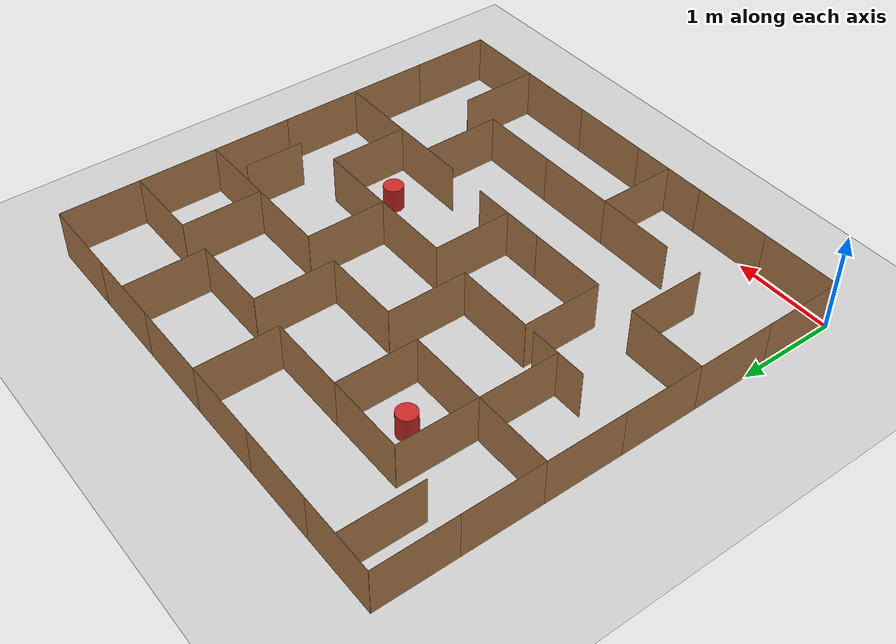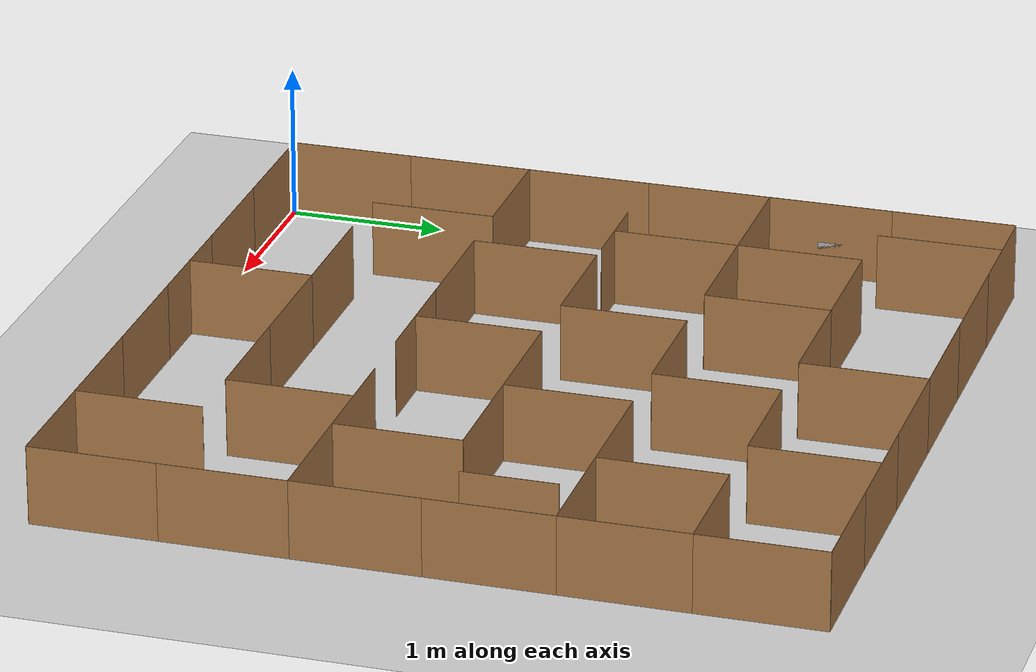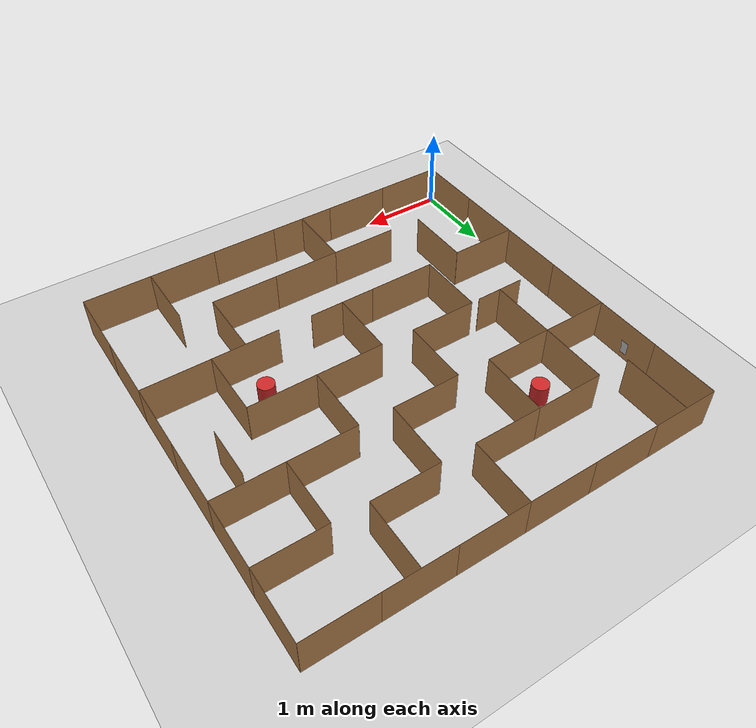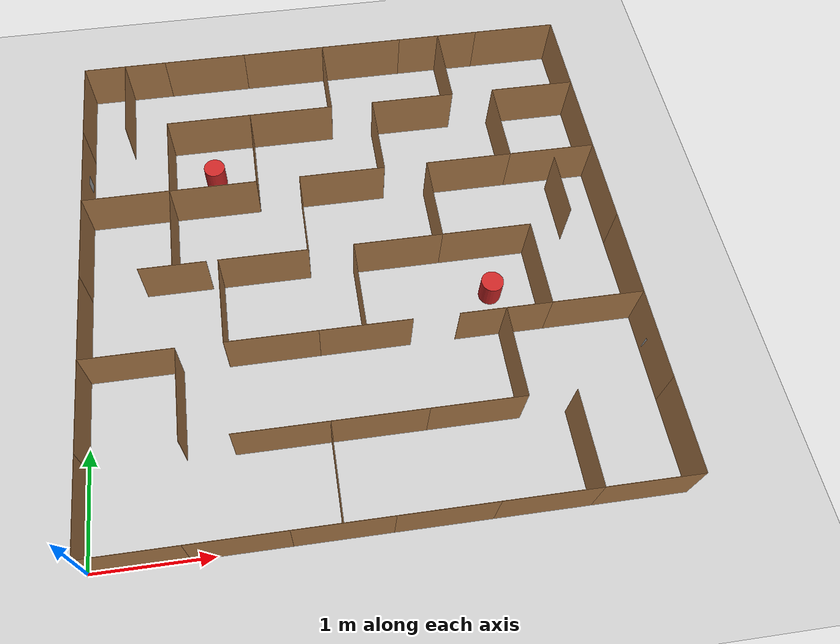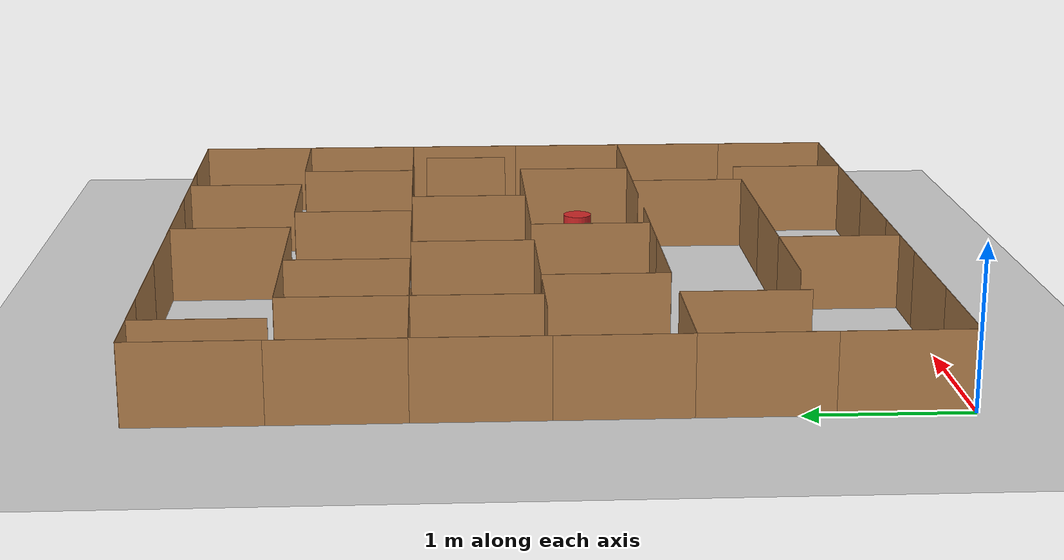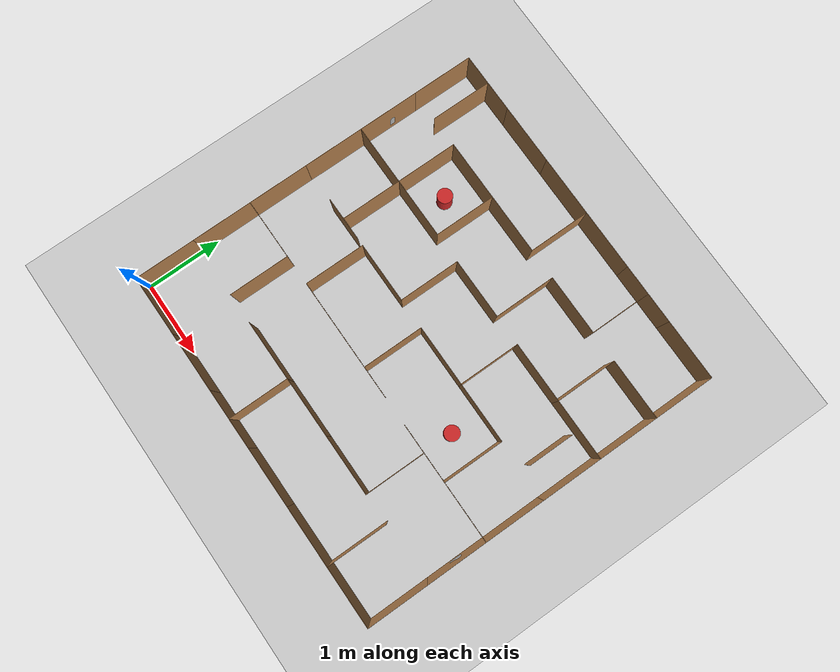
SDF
<?xml version="1.0" ?>
<sdf version="1.6">
  <world name="amr_maze">
    <physics type="ode">
      <real_time_update_rate>1000</real_time_update_rate>
      <max_step_size>0.001</max_step_size>
    </physics>

    <include><uri>model://sun</uri></include>
    <include><uri>model://ground_plane</uri></include>

    <!-- MAZE: 4.8m x 4.8m, based on competition photo -->
    <model name="maze_walls">
      <static>true</static>

      <link name="s0">
        <pose>0.400 0.000 0.25 0 0 0.0000</pose>
        <collision name="c"><geometry><box><size>0.8 0.003 0.5</size></box></geometry></collision>
        <visual name="v"><geometry><box><size>0.8 0.003 0.5</size></box></geometry>
          <material><script>
            <uri>file://media/materials/scripts/gazebo.material</uri>
            <name>Gazebo/Wood</name>
          </script></material>
        </visual>
      </link>
      <link name="n0">
        <pose>0.400 4.800 0.25 0 0 0.0000</pose>
        <collision name="c"><geometry><box><size>0.8 0.003 0.5</size></box></geometry></collision>
        <visual name="v"><geometry><box><size>0.8 0.003 0.5</size></box></geometry>
          <material><script>
            <uri>file://media/materials/scripts/gazebo.material</uri>
            <name>Gazebo/Wood</name>
          </script></material>
        </visual>
      </link>
      <link name="s1">
        <pose>1.200 0.000 0.25 0 0 0.0000</pose>
        <collision name="c"><geometry><box><size>0.8 0.003 0.5</size></box></geometry></collision>
        <visual name="v"><geometry><box><size>0.8 0.003 0.5</size></box></geometry>
          <material><script>
            <uri>file://media/materials/scripts/gazebo.material</uri>
            <name>Gazebo/Wood</name>
          </script></material>
        </visual>
      </link>
      <link name="n1">
        <pose>1.200 4.800 0.25 0 0 0.0000</pose>
        <collision name="c"><geometry><box><size>0.8 0.003 0.5</size></box></geometry></collision>
        <visual name="v"><geometry><box><size>0.8 0.003 0.5</size></box></geometry>
          <material><script>
            <uri>file://media/materials/scripts/gazebo.material</uri>
            <name>Gazebo/Wood</name>
          </script></material>
        </visual>
      </link>
      <link name="s2">
        <pose>2.000 0.000 0.25 0 0 0.0000</pose>
        <collision name="c"><geometry><box><size>0.8 0.003 0.5</size></box></geometry></collision>
        <visual name="v"><geometry><box><size>0.8 0.003 0.5</size></box></geometry>
          <material><script>
            <uri>file://media/materials/scripts/gazebo.material</uri>
            <name>Gazebo/Wood</name>
          </script></material>
        </visual>
      </link>
      <link name="n2">
        <pose>2.000 4.800 0.25 0 0 0.0000</pose>
        <collision name="c"><geometry><box><size>0.8 0.003 0.5</size></box></geometry></collision>
        <visual name="v"><geometry><box><size>0.8 0.003 0.5</size></box></geometry>
          <material><script>
            <uri>file://media/materials/scripts/gazebo.material</uri>
            <name>Gazebo/Wood</name>
          </script></material>
        </visual>
      </link>
      <link name="s3">
        <pose>2.800 0.000 0.25 0 0 0.0000</pose>
        <collision name="c"><geometry><box><size>0.8 0.003 0.5</size></box></geometry></collision>
        <visual name="v"><geometry><box><size>0.8 0.003 0.5</size></box></geometry>
          <material><script>
            <uri>file://media/materials/scripts/gazebo.material</uri>
            <name>Gazebo/Wood</name>
          </script></material>
        </visual>
      </link>
      <link name="n3">
        <pose>2.800 4.800 0.25 0 0 0.0000</pose>
        <collision name="c"><geometry><box><size>0.8 0.003 0.5</size></box></geometry></collision>
        <visual name="v"><geometry><box><size>0.8 0.003 0.5</size></box></geometry>
          <material><script>
            <uri>file://media/materials/scripts/gazebo.material</uri>
            <name>Gazebo/Wood</name>
          </script></material>
        </visual>
      </link>
      <link name="s4">
        <pose>3.600 0.000 0.25 0 0 0.0000</pose>
        <collision name="c"><geometry><box><size>0.8 0.003 0.5</size></box></geometry></collision>
        <visual name="v"><geometry><box><size>0.8 0.003 0.5</size></box></geometry>
          <material><script>
            <uri>file://media/materials/scripts/gazebo.material</uri>
            <name>Gazebo/Wood</name>
          </script></material>
        </visual>
      </link>
      <link name="n4">
        <pose>3.600 4.800 0.25 0 0 0.0000</pose>
        <collision name="c"><geometry><box><size>0.8 0.003 0.5</size></box></geometry></collision>
        <visual name="v"><geometry><box><size>0.8 0.003 0.5</size></box></geometry>
          <material><script>
            <uri>file://media/materials/scripts/gazebo.material</uri>
            <name>Gazebo/Wood</name>
          </script></material>
        </visual>
      </link>
      <link name="s5">
        <pose>4.400 0.000 0.25 0 0 0.0000</pose>
        <collision name="c"><geometry><box><size>0.8 0.003 0.5</size></box></geometry></collision>
        <visual name="v"><geometry><box><size>0.8 0.003 0.5</size></box></geometry>
          <material><script>
            <uri>file://media/materials/scripts/gazebo.material</uri>
            <name>Gazebo/Wood</name>
          </script></material>
        </visual>
      </link>
      <link name="n5">
        <pose>4.400 4.800 0.25 0 0 0.0000</pose>
        <collision name="c"><geometry><box><size>0.8 0.003 0.5</size></box></geometry></collision>
        <visual name="v"><geometry><box><size>0.8 0.003 0.5</size></box></geometry>
          <material><script>
            <uri>file://media/materials/scripts/gazebo.material</uri>
            <name>Gazebo/Wood</name>
          </script></material>
        </visual>
      </link>
      <link name="w0">
        <pose>0.000 0.400 0.25 0 0 1.5708</pose>
        <collision name="c"><geometry><box><size>0.8 0.003 0.5</size></box></geometry></collision>
        <visual name="v"><geometry><box><size>0.8 0.003 0.5</size></box></geometry>
          <material><script>
            <uri>file://media/materials/scripts/gazebo.material</uri>
            <name>Gazebo/Wood</name>
          </script></material>
        </visual>
      </link>
      <link name="e0">
        <pose>4.800 0.400 0.25 0 0 1.5708</pose>
        <collision name="c"><geometry><box><size>0.8 0.003 0.5</size></box></geometry></collision>
        <visual name="v"><geometry><box><size>0.8 0.003 0.5</size></box></geometry>
          <material><script>
            <uri>file://media/materials/scripts/gazebo.material</uri>
            <name>Gazebo/Wood</name>
          </script></material>
        </visual>
      </link>
      <link name="w1">
        <pose>0.000 1.200 0.25 0 0 1.5708</pose>
        <collision name="c"><geometry><box><size>0.8 0.003 0.5</size></box></geometry></collision>
        <visual name="v"><geometry><box><size>0.8 0.003 0.5</size></box></geometry>
          <material><script>
            <uri>file://media/materials/scripts/gazebo.material</uri>
            <name>Gazebo/Wood</name>
          </script></material>
        </visual>
      </link>
      <link name="e1">
        <pose>4.800 1.200 0.25 0 0 1.5708</pose>
        <collision name="c"><geometry><box><size>0.8 0.003 0.5</size></box></geometry></collision>
        <visual name="v"><geometry><box><size>0.8 0.003 0.5</size></box></geometry>
          <material><script>
            <uri>file://media/materials/scripts/gazebo.material</uri>
            <name>Gazebo/Wood</name>
          </script></material>
        </visual>
      </link>
      <link name="w2">
        <pose>0.000 2.000 0.25 0 0 1.5708</pose>
        <collision name="c"><geometry><box><size>0.8 0.003 0.5</size></box></geometry></collision>
        <visual name="v"><geometry><box><size>0.8 0.003 0.5</size></box></geometry>
          <material><script>
            <uri>file://media/materials/scripts/gazebo.material</uri>
            <name>Gazebo/Wood</name>
          </script></material>
        </visual>
      </link>
      <link name="e2">
        <pose>4.800 2.000 0.25 0 0 1.5708</pose>
        <collision name="c"><geometry><box><size>0.8 0.003 0.5</size></box></geometry></collision>
        <visual name="v"><geometry><box><size>0.8 0.003 0.5</size></box></geometry>
          <material><script>
            <uri>file://media/materials/scripts/gazebo.material</uri>
            <name>Gazebo/Wood</name>
          </script></material>
        </visual>
      </link>
      <link name="w3">
        <pose>0.000 2.800 0.25 0 0 1.5708</pose>
        <collision name="c"><geometry><box><size>0.8 0.003 0.5</size></box></geometry></collision>
        <visual name="v"><geometry><box><size>0.8 0.003 0.5</size></box></geometry>
          <material><script>
            <uri>file://media/materials/scripts/gazebo.material</uri>
            <name>Gazebo/Wood</name>
          </script></material>
        </visual>
      </link>
      <link name="e3">
        <pose>4.800 2.800 0.25 0 0 1.5708</pose>
        <collision name="c"><geometry><box><size>0.8 0.003 0.5</size></box></geometry></collision>
        <visual name="v"><geometry><box><size>0.8 0.003 0.5</size></box></geometry>
          <material><script>
            <uri>file://media/materials/scripts/gazebo.material</uri>
            <name>Gazebo/Wood</name>
          </script></material>
        </visual>
      </link>
      <link name="w4">
        <pose>0.000 3.600 0.25 0 0 1.5708</pose>
        <collision name="c"><geometry><box><size>0.8 0.003 0.5</size></box></geometry></collision>
        <visual name="v"><geometry><box><size>0.8 0.003 0.5</size></box></geometry>
          <material><script>
            <uri>file://media/materials/scripts/gazebo.material</uri>
            <name>Gazebo/Wood</name>
          </script></material>
        </visual>
      </link>
      <link name="e4">
        <pose>4.800 3.600 0.25 0 0 1.5708</pose>
        <collision name="c"><geometry><box><size>0.8 0.003 0.5</size></box></geometry></collision>
        <visual name="v"><geometry><box><size>0.8 0.003 0.5</size></box></geometry>
          <material><script>
            <uri>file://media/materials/scripts/gazebo.material</uri>
            <name>Gazebo/Wood</name>
          </script></material>
        </visual>
      </link>
      <link name="w5">
        <pose>0.000 4.400 0.25 0 0 1.5708</pose>
        <collision name="c"><geometry><box><size>0.8 0.003 0.5</size></box></geometry></collision>
        <visual name="v"><geometry><box><size>0.8 0.003 0.5</size></box></geometry>
          <material><script>
            <uri>file://media/materials/scripts/gazebo.material</uri>
            <name>Gazebo/Wood</name>
          </script></material>
        </visual>
      </link>
      <link name="e5">
        <pose>4.800 4.400 0.25 0 0 1.5708</pose>
        <collision name="c"><geometry><box><size>0.8 0.003 0.5</size></box></geometry></collision>
        <visual name="v"><geometry><box><size>0.8 0.003 0.5</size></box></geometry>
          <material><script>
            <uri>file://media/materials/scripts/gazebo.material</uri>
            <name>Gazebo/Wood</name>
          </script></material>
        </visual>
      </link>
      <link name="a01">
        <pose>1.600 0.800 0.25 0 0 0.0000</pose>
        <collision name="c"><geometry><box><size>0.8 0.003 0.5</size></box></geometry></collision>
        <visual name="v"><geometry><box><size>0.8 0.003 0.5</size></box></geometry>
          <material><script>
            <uri>file://media/materials/scripts/gazebo.material</uri>
            <name>Gazebo/Wood</name>
          </script></material>
        </visual>
      </link>
      <link name="a02">
        <pose>2.400 0.800 0.25 0 0 0.0000</pose>
        <collision name="c"><geometry><box><size>0.8 0.003 0.5</size></box></geometry></collision>
        <visual name="v"><geometry><box><size>0.8 0.003 0.5</size></box></geometry>
          <material><script>
            <uri>file://media/materials/scripts/gazebo.material</uri>
            <name>Gazebo/Wood</name>
          </script></material>
        </visual>
      </link>
      <link name="a03">
        <pose>3.200 0.800 0.25 0 0 0.0000</pose>
        <collision name="c"><geometry><box><size>0.8 0.003 0.5</size></box></geometry></collision>
        <visual name="v"><geometry><box><size>0.8 0.003 0.5</size></box></geometry>
          <material><script>
            <uri>file://media/materials/scripts/gazebo.material</uri>
            <name>Gazebo/Wood</name>
          </script></material>
        </visual>
      </link>
      <link name="a04">
        <pose>2.000 0.400 0.25 0 0 1.5708</pose>
        <collision name="c"><geometry><box><size>0.8 0.003 0.5</size></box></geometry></collision>
        <visual name="v"><geometry><box><size>0.8 0.003 0.5</size></box></geometry>
          <material><script>
            <uri>file://media/materials/scripts/gazebo.material</uri>
            <name>Gazebo/Wood</name>
          </script></material>
        </visual>
      </link>
      <link name="a05">
        <pose>4.000 0.400 0.25 0 0 1.5708</pose>
        <collision name="c"><geometry><box><size>0.8 0.003 0.5</size></box></geometry></collision>
        <visual name="v"><geometry><box><size>0.8 0.003 0.5</size></box></geometry>
          <material><script>
            <uri>file://media/materials/scripts/gazebo.material</uri>
            <name>Gazebo/Wood</name>
          </script></material>
        </visual>
      </link>
      <link name="b01">
        <pose>0.400 1.600 0.25 0 0 0.0000</pose>
        <collision name="c"><geometry><box><size>0.8 0.003 0.5</size></box></geometry></collision>
        <visual name="v"><geometry><box><size>0.8 0.003 0.5</size></box></geometry>
          <material><script>
            <uri>file://media/materials/scripts/gazebo.material</uri>
            <name>Gazebo/Wood</name>
          </script></material>
        </visual>
      </link>
      <link name="b02">
        <pose>1.600 1.600 0.25 0 0 0.0000</pose>
        <collision name="c"><geometry><box><size>0.8 0.003 0.5</size></box></geometry></collision>
        <visual name="v"><geometry><box><size>0.8 0.003 0.5</size></box></geometry>
          <material><script>
            <uri>file://media/materials/scripts/gazebo.material</uri>
            <name>Gazebo/Wood</name>
          </script></material>
        </visual>
      </link>
      <link name="b03">
        <pose>2.400 1.600 0.25 0 0 0.0000</pose>
        <collision name="c"><geometry><box><size>0.8 0.003 0.5</size></box></geometry></collision>
        <visual name="v"><geometry><box><size>0.8 0.003 0.5</size></box></geometry>
          <material><script>
            <uri>file://media/materials/scripts/gazebo.material</uri>
            <name>Gazebo/Wood</name>
          </script></material>
        </visual>
      </link>
      <link name="b04">
        <pose>3.600 1.600 0.25 0 0 0.0000</pose>
        <collision name="c"><geometry><box><size>0.8 0.003 0.5</size></box></geometry></collision>
        <visual name="v"><geometry><box><size>0.8 0.003 0.5</size></box></geometry>
          <material><script>
            <uri>file://media/materials/scripts/gazebo.material</uri>
            <name>Gazebo/Wood</name>
          </script></material>
        </visual>
      </link>
      <link name="b05">
        <pose>4.400 1.600 0.25 0 0 0.0000</pose>
        <collision name="c"><geometry><box><size>0.8 0.003 0.5</size></box></geometry></collision>
        <visual name="v"><geometry><box><size>0.8 0.003 0.5</size></box></geometry>
          <material><script>
            <uri>file://media/materials/scripts/gazebo.material</uri>
            <name>Gazebo/Wood</name>
          </script></material>
        </visual>
      </link>
      <link name="b06">
        <pose>0.800 1.200 0.25 0 0 1.5708</pose>
        <collision name="c"><geometry><box><size>0.8 0.003 0.5</size></box></geometry></collision>
        <visual name="v"><geometry><box><size>0.8 0.003 0.5</size></box></geometry>
          <material><script>
            <uri>file://media/materials/scripts/gazebo.material</uri>
            <name>Gazebo/Wood</name>
          </script></material>
        </visual>
      </link>
      <link name="b07">
        <pose>3.600 1.200 0.25 0 0 1.5708</pose>
        <collision name="c"><geometry><box><size>0.8 0.003 0.5</size></box></geometry></collision>
        <visual name="v"><geometry><box><size>0.8 0.003 0.5</size></box></geometry>
          <material><script>
            <uri>file://media/materials/scripts/gazebo.material</uri>
            <name>Gazebo/Wood</name>
          </script></material>
        </visual>
      </link>
      <link name="c01">
        <pose>0.800 2.400 0.25 0 0 0.0000</pose>
        <collision name="c"><geometry><box><size>0.6 0.003 0.5</size></box></geometry></collision>
        <visual name="v"><geometry><box><size>0.6 0.003 0.5</size></box></geometry>
          <material><script>
            <uri>file://media/materials/scripts/gazebo.material</uri>
            <name>Gazebo/Wood</name>
          </script></material>
        </visual>
      </link>
      <link name="c02">
        <pose>1.600 2.400 0.25 0 0 0.0000</pose>
        <collision name="c"><geometry><box><size>0.8 0.003 0.5</size></box></geometry></collision>
        <visual name="v"><geometry><box><size>0.8 0.003 0.5</size></box></geometry>
          <material><script>
            <uri>file://media/materials/scripts/gazebo.material</uri>
            <name>Gazebo/Wood</name>
          </script></material>
        </visual>
      </link>
      <link name="c03">
        <pose>2.800 2.400 0.25 0 0 0.0000</pose>
        <collision name="c"><geometry><box><size>0.8 0.003 0.5</size></box></geometry></collision>
        <visual name="v"><geometry><box><size>0.8 0.003 0.5</size></box></geometry>
          <material><script>
            <uri>file://media/materials/scripts/gazebo.material</uri>
            <name>Gazebo/Wood</name>
          </script></material>
        </visual>
      </link>
      <link name="c04">
        <pose>3.600 2.400 0.25 0 0 0.0000</pose>
        <collision name="c"><geometry><box><size>0.8 0.003 0.5</size></box></geometry></collision>
        <visual name="v"><geometry><box><size>0.8 0.003 0.5</size></box></geometry>
          <material><script>
            <uri>file://media/materials/scripts/gazebo.material</uri>
            <name>Gazebo/Wood</name>
          </script></material>
        </visual>
      </link>
      <link name="c05">
        <pose>1.200 2.000 0.25 0 0 1.5708</pose>
        <collision name="c"><geometry><box><size>0.8 0.003 0.5</size></box></geometry></collision>
        <visual name="v"><geometry><box><size>0.8 0.003 0.5</size></box></geometry>
          <material><script>
            <uri>file://media/materials/scripts/gazebo.material</uri>
            <name>Gazebo/Wood</name>
          </script></material>
        </visual>
      </link>
      <link name="c06">
        <pose>2.400 2.000 0.25 0 0 1.5708</pose>
        <collision name="c"><geometry><box><size>0.8 0.003 0.5</size></box></geometry></collision>
        <visual name="v"><geometry><box><size>0.8 0.003 0.5</size></box></geometry>
          <material><script>
            <uri>file://media/materials/scripts/gazebo.material</uri>
            <name>Gazebo/Wood</name>
          </script></material>
        </visual>
      </link>
      <link name="c07">
        <pose>4.000 2.000 0.25 0 0 1.5708</pose>
        <collision name="c"><geometry><box><size>0.8 0.003 0.5</size></box></geometry></collision>
        <visual name="v"><geometry><box><size>0.8 0.003 0.5</size></box></geometry>
          <material><script>
            <uri>file://media/materials/scripts/gazebo.material</uri>
            <name>Gazebo/Wood</name>
          </script></material>
        </visual>
      </link>
      <link name="d01">
        <pose>0.400 3.200 0.25 0 0 0.0000</pose>
        <collision name="c"><geometry><box><size>0.8 0.003 0.5</size></box></geometry></collision>
        <visual name="v"><geometry><box><size>0.8 0.003 0.5</size></box></geometry>
          <material><script>
            <uri>file://media/materials/scripts/gazebo.material</uri>
            <name>Gazebo/Wood</name>
          </script></material>
        </visual>
      </link>
      <link name="d02">
        <pose>1.200 3.200 0.25 0 0 0.0000</pose>
        <collision name="c"><geometry><box><size>0.8 0.003 0.5</size></box></geometry></collision>
        <visual name="v"><geometry><box><size>0.8 0.003 0.5</size></box></geometry>
          <material><script>
            <uri>file://media/materials/scripts/gazebo.material</uri>
            <name>Gazebo/Wood</name>
          </script></material>
        </visual>
      </link>
      <link name="d03">
        <pose>2.400 3.200 0.25 0 0 0.0000</pose>
        <collision name="c"><geometry><box><size>0.8 0.003 0.5</size></box></geometry></collision>
        <visual name="v"><geometry><box><size>0.8 0.003 0.5</size></box></geometry>
          <material><script>
            <uri>file://media/materials/scripts/gazebo.material</uri>
            <name>Gazebo/Wood</name>
          </script></material>
        </visual>
      </link>
      <link name="d04">
        <pose>3.600 3.200 0.25 0 0 0.0000</pose>
        <collision name="c"><geometry><box><size>0.8 0.003 0.5</size></box></geometry></collision>
        <visual name="v"><geometry><box><size>0.8 0.003 0.5</size></box></geometry>
          <material><script>
            <uri>file://media/materials/scripts/gazebo.material</uri>
            <name>Gazebo/Wood</name>
          </script></material>
        </visual>
      </link>
      <link name="d05">
        <pose>4.400 3.200 0.25 0 0 0.0000</pose>
        <collision name="c"><geometry><box><size>0.8 0.003 0.5</size></box></geometry></collision>
        <visual name="v"><geometry><box><size>0.8 0.003 0.5</size></box></geometry>
          <material><script>
            <uri>file://media/materials/scripts/gazebo.material</uri>
            <name>Gazebo/Wood</name>
          </script></material>
        </visual>
      </link>
      <link name="d06">
        <pose>0.800 2.800 0.25 0 0 1.5708</pose>
        <collision name="c"><geometry><box><size>0.8 0.003 0.5</size></box></geometry></collision>
        <visual name="v"><geometry><box><size>0.8 0.003 0.5</size></box></geometry>
          <material><script>
            <uri>file://media/materials/scripts/gazebo.material</uri>
            <name>Gazebo/Wood</name>
          </script></material>
        </visual>
      </link>
      <link name="d07">
        <pose>2.000 2.800 0.25 0 0 1.5708</pose>
        <collision name="c"><geometry><box><size>0.8 0.003 0.5</size></box></geometry></collision>
        <visual name="v"><geometry><box><size>0.8 0.003 0.5</size></box></geometry>
          <material><script>
            <uri>file://media/materials/scripts/gazebo.material</uri>
            <name>Gazebo/Wood</name>
          </script></material>
        </visual>
      </link>
      <link name="d08">
        <pose>3.200 2.800 0.25 0 0 1.5708</pose>
        <collision name="c"><geometry><box><size>0.8 0.003 0.5</size></box></geometry></collision>
        <visual name="v"><geometry><box><size>0.8 0.003 0.5</size></box></geometry>
          <material><script>
            <uri>file://media/materials/scripts/gazebo.material</uri>
            <name>Gazebo/Wood</name>
          </script></material>
        </visual>
      </link>
      <link name="d09">
        <pose>4.400 2.800 0.25 0 0 1.5708</pose>
        <collision name="c"><geometry><box><size>0.6 0.003 0.5</size></box></geometry></collision>
        <visual name="v"><geometry><box><size>0.6 0.003 0.5</size></box></geometry>
          <material><script>
            <uri>file://media/materials/scripts/gazebo.material</uri>
            <name>Gazebo/Wood</name>
          </script></material>
        </visual>
      </link>
      <link name="e01">
        <pose>1.200 4.000 0.25 0 0 0.0000</pose>
        <collision name="c"><geometry><box><size>0.8 0.003 0.5</size></box></geometry></collision>
        <visual name="v"><geometry><box><size>0.8 0.003 0.5</size></box></geometry>
          <material><script>
            <uri>file://media/materials/scripts/gazebo.material</uri>
            <name>Gazebo/Wood</name>
          </script></material>
        </visual>
      </link>
      <link name="e02">
        <pose>2.000 4.000 0.25 0 0 0.0000</pose>
        <collision name="c"><geometry><box><size>0.8 0.003 0.5</size></box></geometry></collision>
        <visual name="v"><geometry><box><size>0.8 0.003 0.5</size></box></geometry>
          <material><script>
            <uri>file://media/materials/scripts/gazebo.material</uri>
            <name>Gazebo/Wood</name>
          </script></material>
        </visual>
      </link>
      <link name="e03">
        <pose>3.200 4.000 0.25 0 0 0.0000</pose>
        <collision name="c"><geometry><box><size>0.8 0.003 0.5</size></box></geometry></collision>
        <visual name="v"><geometry><box><size>0.8 0.003 0.5</size></box></geometry>
          <material><script>
            <uri>file://media/materials/scripts/gazebo.material</uri>
            <name>Gazebo/Wood</name>
          </script></material>
        </visual>
      </link>
      <link name="e04">
        <pose>4.400 4.000 0.25 0 0 0.0000</pose>
        <collision name="c"><geometry><box><size>0.8 0.003 0.5</size></box></geometry></collision>
        <visual name="v"><geometry><box><size>0.8 0.003 0.5</size></box></geometry>
          <material><script>
            <uri>file://media/materials/scripts/gazebo.material</uri>
            <name>Gazebo/Wood</name>
          </script></material>
        </visual>
      </link>
      <link name="e05">
        <pose>0.800 3.600 0.25 0 0 1.5708</pose>
        <collision name="c"><geometry><box><size>0.8 0.003 0.5</size></box></geometry></collision>
        <visual name="v"><geometry><box><size>0.8 0.003 0.5</size></box></geometry>
          <material><script>
            <uri>file://media/materials/scripts/gazebo.material</uri>
            <name>Gazebo/Wood</name>
          </script></material>
        </visual>
      </link>
      <link name="e06">
        <pose>1.600 3.600 0.25 0 0 1.5708</pose>
        <collision name="c"><geometry><box><size>0.8 0.003 0.5</size></box></geometry></collision>
        <visual name="v"><geometry><box><size>0.8 0.003 0.5</size></box></geometry>
          <material><script>
            <uri>file://media/materials/scripts/gazebo.material</uri>
            <name>Gazebo/Wood</name>
          </script></material>
        </visual>
      </link>
      <link name="e07">
        <pose>2.800 3.600 0.25 0 0 1.5708</pose>
        <collision name="c"><geometry><box><size>0.8 0.003 0.5</size></box></geometry></collision>
        <visual name="v"><geometry><box><size>0.8 0.003 0.5</size></box></geometry>
          <material><script>
            <uri>file://media/materials/scripts/gazebo.material</uri>
            <name>Gazebo/Wood</name>
          </script></material>
        </visual>
      </link>
      <link name="e08">
        <pose>4.000 3.600 0.25 0 0 1.5708</pose>
        <collision name="c"><geometry><box><size>0.8 0.003 0.5</size></box></geometry></collision>
        <visual name="v"><geometry><box><size>0.8 0.003 0.5</size></box></geometry>
          <material><script>
            <uri>file://media/materials/scripts/gazebo.material</uri>
            <name>Gazebo/Wood</name>
          </script></material>
        </visual>
      </link>
      <link name="f01">
        <pose>0.400 4.400 0.25 0 0 1.5708</pose>
        <collision name="c"><geometry><box><size>0.8 0.003 0.5</size></box></geometry></collision>
        <visual name="v"><geometry><box><size>0.8 0.003 0.5</size></box></geometry>
          <material><script>
            <uri>file://media/materials/scripts/gazebo.material</uri>
            <name>Gazebo/Wood</name>
          </script></material>
        </visual>
      </link>
      <link name="f02">
        <pose>2.400 4.400 0.25 0 0 1.5708</pose>
        <collision name="c"><geometry><box><size>0.8 0.003 0.5</size></box></geometry></collision>
        <visual name="v"><geometry><box><size>0.8 0.003 0.5</size></box></geometry>
          <material><script>
            <uri>file://media/materials/scripts/gazebo.material</uri>
            <name>Gazebo/Wood</name>
          </script></material>
        </visual>
      </link>
      <link name="f03">
        <pose>3.600 4.400 0.25 0 0 1.5708</pose>
        <collision name="c"><geometry><box><size>0.8 0.003 0.5</size></box></geometry></collision>
        <visual name="v"><geometry><box><size>0.8 0.003 0.5</size></box></geometry>
          <material><script>
            <uri>file://media/materials/scripts/gazebo.material</uri>
            <name>Gazebo/Wood</name>
          </script></material>
        </visual>
      </link>
    </model>

    <!-- APRILTAG STATIONS -->
    <include>
      <uri>model://apriltag_0</uri>
      <name>apriltag_station_0</name>
      <pose>4.799 1.2 0.15 0 0 3.1416</pose>
    </include>
    <include>
      <uri>model://apriltag_2</uri>
      <name>apriltag_station_2</name>
      <pose>0.001 3.6 0.15 0 0 0.0000</pose>
    </include>

    <!-- DELIVERY BUCKETS -->
    <model name="bucket_1">
      <static>true</static>
      <pose>3.6 2.0 0.125 0 0 0</pose>
      <link name="bucket">
        <visual name="v">
          <geometry><cylinder><radius>0.10</radius><length>0.25</length></cylinder></geometry>
          <material><script>
            <uri>file://media/materials/scripts/gazebo.material</uri>
            <name>Gazebo/Red</name>
          </script></material>
        </visual>
        <collision name="c">
          <geometry><cylinder><radius>0.10</radius><length>0.25</length></cylinder></geometry>
        </collision>
      </link>
    </model>
    <model name="bucket_2">
      <static>true</static>
      <pose>1.2 3.6 0.125 0 0 0</pose>
      <link name="bucket">
        <visual name="v">
          <geometry><cylinder><radius>0.10</radius><length>0.25</length></cylinder></geometry>
          <material><script>
            <uri>file://media/materials/scripts/gazebo.material</uri>
            <name>Gazebo/Red</name>
          </script></material>
        </visual>
        <collision name="c">
          <geometry><cylinder><radius>0.10</radius><length>0.25</length></cylinder></geometry>
        </collision>
      </link>
    </model>

  </world>
</sdf>

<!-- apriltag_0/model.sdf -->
<sdf version="1.6">
  <model name="apriltag_0">
    <static>true</static>
    <link name="tag_link">
      <visual name="visual">
        <geometry>
          <box><size>0.001 0.16 0.16</size></box>
        </geometry>
        <material>
          <script>
            <uri>model://apriltag_0/materials/scripts</uri>
            <uri>model://apriltag_0/materials/textures</uri>
            <name>AprilTag0</name>
          </script>
        </material>
      </visual>
      <collision name="collision">
        <geometry>
          <box><size>0.001 0.16 0.16</size></box>
        </geometry>
      </collision>
    </link>
  </model>
</sdf>

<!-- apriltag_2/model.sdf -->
<sdf version="1.6">
  <model name="apriltag_2">
    <static>true</static>
    <link name="tag_link">
      <visual name="visual">
        <geometry>
          <box><size>0.001 0.16 0.16</size></box>
        </geometry>
        <material>
          <script>
            <uri>model://apriltag_2/materials/scripts</uri>
            <uri>model://apriltag_2/materials/textures</uri>
            <name>AprilTag2</name>
          </script>
        </material>
      </visual>
      <collision name="collision">
        <geometry>
          <box><size>0.001 0.16 0.16</size></box>
        </geometry>
      </collision>
    </link>
  </model>
</sdf>
